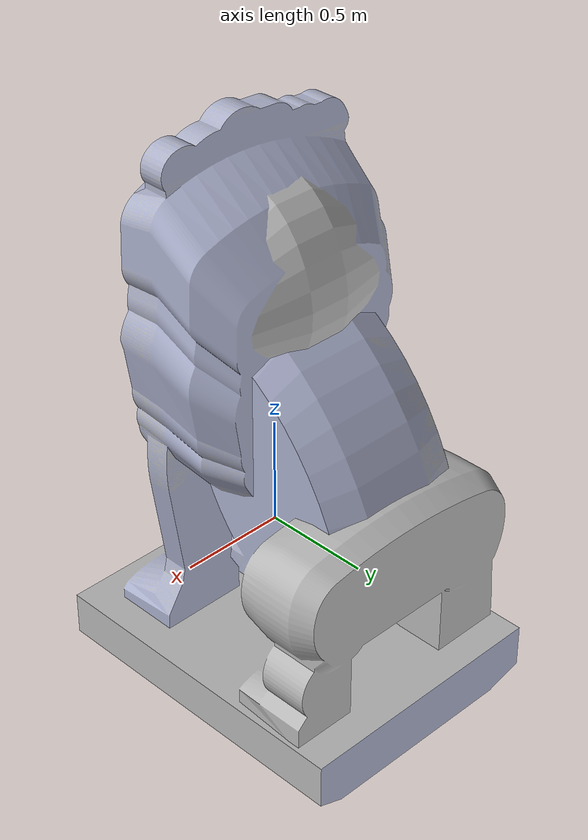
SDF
<?xml version="1.0" ?>
<sdf version="1.5">
  <model name="lion_statue">
    <static>true</static>
    <link name="link">
      <pose>0 0 0 0 0 0</pose>
      <collision name="collision">
        <geometry>
          <box>
            <size>1.5 2.0 0.01</size>
          </box>
        </geometry>
      </collision>
      <visual name="visual">
        <cast_shadows>false</cast_shadows>
        <geometry>
          <mesh>
            <uri>model://statue/meshes/model.dae</uri>
          </mesh>
        </geometry>
        <material>
          <script>
            <uri>model://statue/meshes/model</uri>
          </script>
        </material>
      </visual>
    </link>
  </model>
</sdf>
